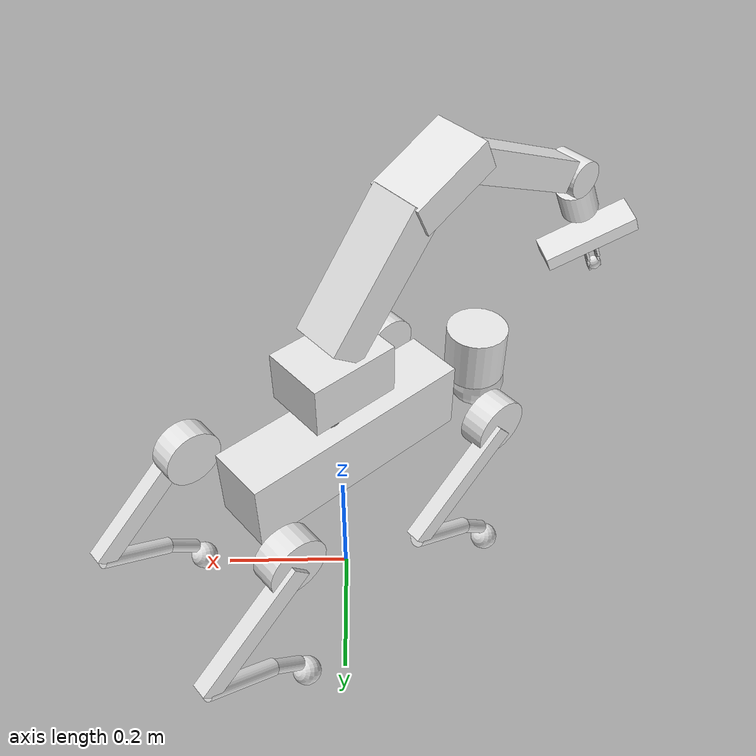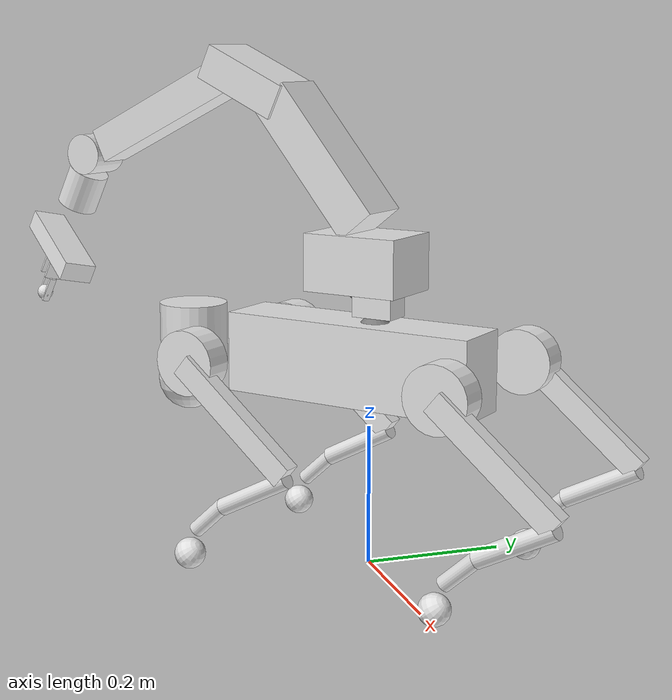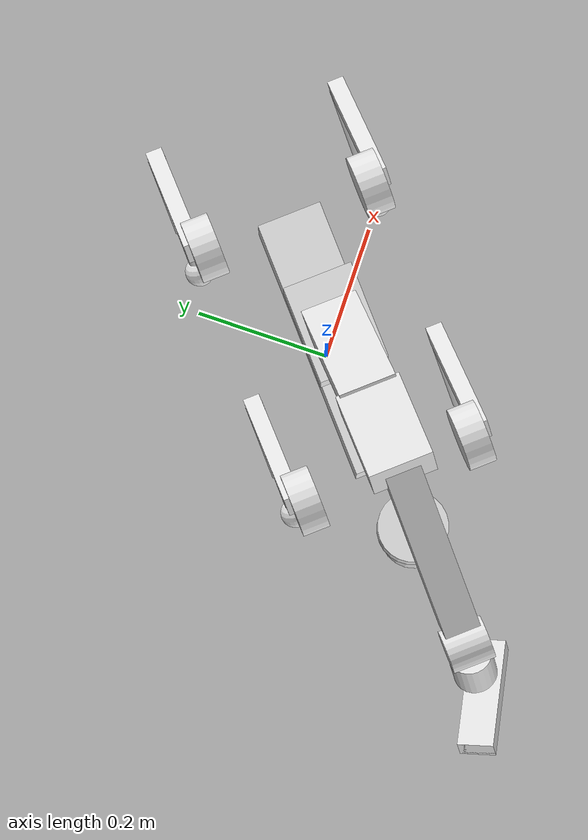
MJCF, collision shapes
<mujoco>
  <compiler angle="radian" assetdir="assets"/>
  <option timestep="0.02">
    <flag/>
  </option>
  <statistic/>
  <asset>
    <texture type="2d" colorspace="linear" name="noise_normal" file="noise_normal.png"/>
    <material name="black_plastic" rgba="0.0507087 0.0507087 0.0507087 1.0" reflectance="0.5" roughness="0.4" metallic="0.0" texuniform="true" texrepeat="12.0 12.0">
      <layer texture="noise_normal" role="normal"/>
    </material>
    <material name="black_metal" rgba="0.220085 0.220813 0.2209164 1.0" reflectance="0.5" roughness="0.5" metallic="1.0" texuniform="true" texrepeat="16.0 16.0">
      <layer texture="noise_normal" role="normal"/>
    </material>
    <material name="aluminum_rough" rgba="0.9621279 0.9653596 0.9658199 1.0" reflectance="0.5" roughness="0.54" metallic="1.0" texuniform="true" texrepeat="12.0 12.0">
      <layer texture="noise_normal" role="normal"/>
    </material>
    <material name="gray_plastic" rgba="0.5969514 0.5983734 0.6262097 1.0" reflectance="0.5" roughness="0.4" metallic="0.0"/>
    <material name="black_rubber" rgba="0.0507087 0.0507087 0.0507087 1.0" reflectance="0.5" roughness="0.7318181" metallic="0.0" texuniform="true" texrepeat="16.0 16.0">
      <layer texture="noise_normal" role="normal"/>
    </material>
    <material name="template" rgba="0.9063318 0.9063318 0.9063318 1.0" reflectance="0.5" roughness="0.5" metallic="0.0"/>
    <mesh name="base_0" file="base_0.obj"/>
    <mesh name="base_1" file="base_1.obj"/>
    <mesh name="base_2" file="base_2.obj"/>
    <mesh name="base_3" file="base_3.obj"/>
    <mesh name="base_4" file="base_4.obj"/>
    <mesh name="hip_0" file="hip_0.obj"/>
    <mesh name="hip_1" file="hip_1.obj"/>
    <mesh name="thigh_0" file="thigh_0.obj"/>
    <mesh name="thigh_1" file="thigh_1.obj"/>
    <mesh name="calf_0" file="calf_0.obj"/>
    <mesh name="foot" file="foot.obj"/>
    <mesh name="thigh_mirror_0" file="thigh_mirror_0.obj"/>
    <mesh name="thigh_mirror_1" file="thigh_mirror_1.obj"/>
    <mesh name="calf_mirror_0" file="calf_mirror_0.obj"/>
    <mesh name="slider_base_link_0" file="slider_base_link_0.obj"/>
    <mesh name="link1" file="link1.obj"/>
    <mesh name="link4" file="link4.obj"/>
    <mesh name="base_link_base_link" file="base_link_base_link.obj"/>
    <mesh name="slider_base_link_0_001" file="slider_base_link_0_001.obj"/>
    <mesh name="link2_0" file="link2_0.obj"/>
    <mesh name="link6" file="link6.obj"/>
    <mesh name="right" file="right.obj"/>
    <mesh name="link3_1" file="link3_1.obj"/>
    <mesh name="link5_1" file="link5_1.obj"/>
    <mesh name="link2_1" file="link2_1.obj"/>
    <mesh name="left" file="left.obj"/>
    <mesh name="link3_0" file="link3_0.obj"/>
    <mesh name="link5_0" file="link5_0.obj"/>
  </asset>
  <worldbody>
    <body name="base" pos="0.0 -0.0164447 0.2959779" quat="0.3440766 0.0 0.0 -0.9389416">
      <inertial pos="0.021112 0.0 -0.005366" quat="0.000544 -0.7134351 0.0017372 -0.700719" mass="6.921" diaginertia="0.107027 0.0980771 0.0244531"/>
      <joint name="JNT_Joint" pos="0.0 0.0 0.0" axis="-0.0 1.0 1e-07" type="free" armature="0.01" damping="0.5" frictionloss="0.2"/>
      <geom name="base1" pos="0.0 0.0 0.0" quat="1.0 0.0 0.0 0.0" type="box" size="0.1881 0.04675 0.057" material="template" group="3" condim="1" conaffinity="2" friction="0.6 0.005 0.0001" margin="0.001"/>
      <geom name="base2" pos="0.285 0.0 0.01" quat="1.0 0.0 0.0 0.0" type="cylinder" size="0.05 0.045" material="template" group="3" condim="1" conaffinity="2" friction="0.6 0.005 0.0001" margin="0.001"/>
      <geom name="base3" pos="0.293 0.0 -0.06" quat="1.0 0.0 0.0 0.0" type="sphere" size="0.047" material="template" group="3" condim="1" conaffinity="2" friction="0.6 0.005 0.0001" margin="0.001"/>
      <geom name="base_0" pos="0.0 0.0 0.0" quat="1.0 0.0 0.0 0.0" type="mesh" mesh="base_0" material="black_plastic" group="2" condim="1" contype="0" conaffinity="0" friction="0.6 0.005 0.0001" margin="0.001"/>
      <geom name="base_1" pos="0.0 0.0 0.0" quat="1.0 0.0 0.0 0.0" type="mesh" mesh="base_1" material="black_metal" group="2" condim="1" contype="0" conaffinity="0" friction="0.6 0.005 0.0001" margin="0.001"/>
      <geom name="base_2" pos="0.0 0.0 0.0" quat="1.0 0.0 0.0 0.0" type="mesh" mesh="base_2" material="black_plastic" group="2" condim="1" contype="0" conaffinity="0" friction="0.6 0.005 0.0001" margin="0.001"/>
      <geom name="base_3" pos="0.0 0.0 0.0" quat="1.0 0.0 0.0 0.0" type="mesh" mesh="base_3" material="aluminum_rough" group="2" condim="1" contype="0" conaffinity="0" friction="0.6 0.005 0.0001" margin="0.001"/>
      <geom name="base_4" pos="0.0 0.0 0.0" quat="1.0 0.0 0.0 0.0" type="mesh" mesh="base_4" material="gray_plastic" group="2" condim="1" contype="0" conaffinity="0" friction="0.6 0.005 0.0001" margin="0.001"/>
      <site name="imu" pos="-0.02557 0.0 0.04232" quat="1.0 0.0 0.0 0.0" type="sphere" size="0.025"/>
      <body name="arm_base_on_go2" pos="0.0045 -0.0 0.0945" quat="1.0 0.0 -0.0 0.0">
        <body name="arm_base" pos="0.0 0.0 0.0" quat="1.0 0.0 0.0 -0.0">
          <inertial pos="-0.0262914 -0.0151415 0.0260742" quat="1.0 0.0 0.0 -0.0" mass="0.7355205" diaginertia="0.0007989 0.0009956 0.0014837"/>
          <geom name="base_link_collision" pos="-0.015 0.0 0.045" quat="1.0 0.0 0.0 -0.0" type="box" size="0.07 0.05 0.04" material="template" group="3"/>
          <geom name="base_link_visual" pos="0.0 0.0 0.0" quat="1.0 0.0 0.0 -0.0" type="mesh" mesh="base_link_base_link" material="black_metal" group="2" contype="0" conaffinity="0"/>
          <site name="armbasepoint" pos="0.0 0.0 0.0" quat="1.0 0.0 0.0 -0.0" type="sphere" size="0.01"/>
          <site name="touch_site_base" pos="-0.015 0.0 0.045" quat="1.0 0.0 0.0 -0.0" type="sphere" size="0.001" group="3"/>
          <body name="link1" pos="0.0 0.0 0.1172" quat="1.0 0.0 0.0 0.0">
            <inertial pos="7.91e-05 -0.002527 -0.0041359" quat="0.6967159 0.7165578 0.0238919 -0.0236876" mass="0.54639" diaginertia="0.0003463 0.0003254 0.0002863"/>
            <joint name="joint1" pos="0.0 0.0 0.0" axis="0.0 0.0 1.0" type="hinge" range="-3.1415999 2.0943999" actuatorfrcrange="-24.0 24.0" armature="0.01" damping="0.2" frictionloss="1.0"/>
            <geom name="link1_visual" pos="0.0 0.0 0.0" quat="1.0 -0.0 0.0 -0.0" type="mesh" mesh="link1" material="black_metal" group="2" contype="0" conaffinity="0"/>
            <site name="touch_site_link1" pos="0.0 0.0 0.0" quat="1.0 -0.0 0.0 -0.0" type="sphere" size="0.001" group="3"/>
            <body name="link2" pos="0.0 -0.0 1e-07" quat="0.6596778 0.6596767 -0.2546084 0.2546103">
              <inertial pos="0.22493 0.0047721 0.008023" quat="0.210875 -0.6324729 0.273056 -0.6935058" mass="0.64621" diaginertia="0.0051654 0.0050504 0.0004186"/>
              <joint name="joint2" pos="0.0 0.0 0.0" axis="-1e-07 -0.0 1.0" type="hinge" range="-2.9670999 0.17453" actuatorfrcrange="-24.0 24.0" armature="0.01" damping="0.2" frictionloss="1.0"/>
              <geom name="link2_0_visual" pos="0.0 -0.0 0.0" quat="1.0 0.0 -0.0 0.0" type="mesh" mesh="link2_0" material="black_metal" group="2" contype="0" conaffinity="0"/>
              <geom name="link2_1_visual" pos="0.0 -0.0 0.0" quat="1.0 0.0 -0.0 0.0" type="mesh" mesh="link2_1" material="aluminum_rough" group="2" contype="0" conaffinity="0"/>
              <geom name="link2_collision1" pos="0.08 0.015 0.0" quat="0.9971888 -0.0 -0.0 0.0749297" type="box" size="0.11 0.03 0.04" material="template" group="3"/>
              <geom name="link2_collision2" pos="0.235 0.015 0.0" quat="0.9887711 -0.0 -0.0 -0.1494382" type="box" size="0.065 0.025 0.045" material="template" group="3"/>
              <site name="touch_site_link2" pos="0.15 0.0 0.0" quat="1.0 -0.0 -0.0 0.0" type="sphere" size="0.001" group="3"/>
              <body name="link3" pos="0.2700901 0.0 -1e-07" quat="0.8291553 0.0 0.0 -0.5590183">
                <inertial pos="0.16813 -5.56e-05 0.0031184" quat="0.511278 0.4884231 0.4891911 0.5106171" mass="0.26829" diaginertia="0.0031527 0.0030951 0.0002394"/>
                <joint name="joint3" pos="0.0 0.0 0.0" axis="-1e-07 0.0 1.0" type="hinge" range="-0.087266 3.1415999" actuatorfrcrange="-24.0 24.0" armature="0.01" damping="0.2" frictionloss="1.0"/>
                <geom name="link3_0_visual" pos="0.0 2e-07 0.0" quat="1.0 0.0 -2e-07 -0.0" type="mesh" mesh="link3_0" material="black_metal" group="2" contype="0" conaffinity="0"/>
                <geom name="link3_1_visual" pos="0.0 2e-07 0.0" quat="1.0 0.0 -2e-07 -0.0" type="mesh" mesh="link3_1" material="aluminum_rough" group="2" contype="0" conaffinity="0"/>
                <geom name="link3_collision" pos="0.13 0.0 0.0" quat="1.0 -0.0 -0.0 -0.0" type="box" size="0.13 0.025 0.025" material="template" group="3"/>
                <site name="touch_site_link3" pos="0.13 0.0 0.0" quat="1.0 -0.0 -0.0 -0.0" type="sphere" size="0.001" group="3"/>
                <body name="link4" pos="0.29015 0.0 0.0" quat="0.5000001 -0.5 0.5 -0.5">
                  <inertial pos="5.2e-06 0.0004041 -0.03228" quat="0.9999686 -0.0001748 -0.0079204 -6.98e-05" mass="0.34876" diaginertia="0.0004236 0.000412 0.0001268"/>
                  <joint name="joint4" pos="0.0 0.0 0.0" axis="0.0 -0.0 1.0" type="hinge" range="-3.0107 3.0107" actuatorfrcrange="-8.0 8.0" armature="0.01" damping="0.1" frictionloss="0.5"/>
                  <geom name="link4_collision" pos="0.0 0.0 0.0" quat="0.7071055 0.707108 0.0 0.0" type="cylinder" size="0.03 0.03" material="template" group="3"/>
                  <geom name="link4_visual" pos="-0.0 -0.0 -1e-07" quat="1.0 -0.0 0.0 0.0" type="mesh" mesh="link4" material="black_metal" group="2" contype="0" conaffinity="0"/>
                  <site name="touch_site_link4" pos="0.0 0.0 0.0" quat="1.0 -0.0 0.0 0.0" type="sphere" size="0.001" group="3"/>
                  <body name="link5" pos="-1e-07 -1e-07 -1e-07" quat="0.6695616 0.6695647 0.2273443 -0.2273431">
                    <inertial pos="8.3e-06 0.026148 0.002525" quat="0.5315679 0.4662999 0.4662999 0.5315679" mass="0.36132" diaginertia="0.0004677 0.0004329 0.0001782"/>
                    <joint name="joint5" pos="0.0 0.0 0.0" axis="-1e-07 -0.0 1.0" type="hinge" range="-1.7628 1.7628" actuatorfrcrange="-8.0 8.0" armature="0.01" damping="0.1" frictionloss="0.5"/>
                    <geom name="link5_0_visual" pos="0.0 0.0 -0.0" quat="1.0 -0.0 -2e-07 -0.0" type="mesh" mesh="link5_0" material="black_metal" group="2" contype="0" conaffinity="0"/>
                    <geom name="link5_1_visual" pos="0.0 0.0 -0.0" quat="1.0 -0.0 -2e-07 -0.0" type="mesh" mesh="link5_1" material="aluminum_rough" group="2" contype="0" conaffinity="0"/>
                    <geom name="link5_collision" pos="0.0 0.06 0.0" quat="0.7071055 0.707108 -0.0 0.0" type="cylinder" size="0.03 0.03" material="template" group="3"/>
                    <site name="touch_site_link5" pos="0.0 0.06 0.0" quat="1.0 -0.0 -0.0 -0.0" type="sphere" size="0.001" group="3"/>
                    <body name="link6" pos="-4e-07 0.23645 -1e-07" quat="0.6029063 -0.6029088 -0.3694616 -0.3694631">
                      <inertial pos="-0.0047053 7.39e-05 -0.12293" quat="1.0 -0.0 -0.0 0.0" mass="0.53855" diaginertia="5e-05 5e-05 3.85e-05"/>
                      <joint name="joint6" pos="0.0 0.0 0.0" axis="0.0 0.0 1.0" type="hinge" range="-3.0107 3.0107" actuatorfrcrange="-8.0 8.0" armature="0.01" damping="0.1" frictionloss="0.5"/>
                      <geom name="link6_collision" pos="0.0 0.0 -0.07" quat="1.0 -0.0 -0.0 0.0" type="box" size="0.025 0.08 0.015" material="template" group="3"/>
                      <geom name="link6_visual" pos="0.0 0.0 0.0" quat="1.0 -1e-07 0.0 0.0" type="mesh" mesh="link6" material="black_metal" group="2" contype="0" conaffinity="0"/>
                      <site name="endpoint" pos="0.0 0.0 0.015" quat="0.7071055 -0.0 -0.707108 0.0" type="sphere" size="0.01"/>
                      <site name="touch_site_link6" pos="0.0 0.0 -0.07" quat="1.0 -0.0 -0.0 0.0" type="sphere" size="0.001" group="3"/>
                      <body name="eef_connect_base_link" pos="0.0 1e-07 -1e-07" quat="1.0 -0.0 0.0 -0.0">
                        <geom name="eef_collision" pos="0.0 0.0 0.015" quat="1.0 0.0 -0.0 -0.0" type="sphere" size="0.012" material="template" group="3"/>
                        <site name="touch_site_eef" pos="0.0 0.0 0.015" quat="1.0 0.0 -0.0 -0.0" type="sphere" size="0.001" group="3"/>
                        <body name="g2_base_link" pos="1e-07 -2e-07 -1e-07" quat="1.0 0.0 0.0 0.0">
                          <geom name="g2_base_link_collision" pos="0.0 0.0 -0.07" quat="1.0 0.0 -0.0 -0.0" type="box" size="0.025 0.08 0.015" material="template" group="3"/>
                          <site name="touch_site_g2base" pos="0.0 0.0 -0.07" quat="1.0 0.0 -0.0 -0.0" type="sphere" size="0.001" group="3"/>
                          <body name="g2_left_link" pos="-1e-07 0.0077898 0.0" quat="1.0 0.0 0.0 0.0">
                            <inertial pos="-0.048742 0.0096369 0.0004432" quat="0.7573929 0.0415116 0.0313705 0.650883" mass="0.0626" diaginertia="2.79e-05 1.9e-05 1.22e-05"/>
                            <geom name="g2_left_finger_collision" pos="0.0 0.002 -0.035" quat="1.0 -0.0 0.0 0.0" type="box" size="0.015 0.002 0.018" material="template" group="3"/>
                            <geom name="g2_left_finger_pad" pos="0.0 0.002 0.005" quat="1.0 -0.0 0.0 0.0" type="box" size="0.00525 0.002 0.02" material="template" group="3"/>
                            <geom name="g2_left_link_visual" pos="2e-07 -1e-07 1e-07" quat="1.0 -0.0 1e-07 0.0" type="mesh" mesh="right" material="black_metal" group="2" contype="0" conaffinity="0"/>
                          </body>
                          <body name="g2_right_link" pos="-1e-07 -0.0062174 -0.0" quat="1.0 0.0 0.0 0.0">
                            <inertial pos="-0.049039 -0.0096764 0.0003887" quat="0.6504908 0.0296695 0.0398251 0.7578888" mass="0.061803" diaginertia="2.75e-05 1.88e-05 1.19e-05"/>
                            <geom name="g2_right_finger_collision" pos="0.0 -0.002 -0.035" quat="1.0 -0.0 0.0 0.0" type="box" size="0.015 0.002 0.018" material="template" group="3"/>
                            <geom name="g2_right_finger_pad" pos="0.0 -0.002 0.005" quat="1.0 -0.0 0.0 0.0" type="box" size="0.00525 0.002 0.02" material="template" group="3"/>
                            <geom name="g2_right_link_visual" pos="1e-07 2e-07 0.0" quat="1.0 -0.0 1e-07 0.0" type="mesh" mesh="left" material="black_metal" group="2" contype="0" conaffinity="0"/>
                          </body>
                        </body>
                      </body>
                    </body>
                  </body>
                </body>
              </body>
            </body>
          </body>
        </body>
      </body>
      <body name="FL_hip" pos="0.1934 0.0465 0.0" quat="1.0 0.0 0.0 0.0">
        <inertial pos="-0.0054 0.00194 -0.000105" quat="0.4970138 0.4992449 0.505462 0.4982369" mass="0.678" diaginertia="0.000884 0.000596 0.00048"/>
        <joint name="FL_hip_joint" pos="0.0 0.0 0.0" axis="1.0 -1e-07 -1e-07" type="hinge" range="-1.0472 1.0472" armature="0.01" damping="0.5" frictionloss="0.2"/>
        <geom name="FL_hip_geom" pos="0.0 0.08 0.0" quat="0.7071068 0.7071068 -0.0 0.0" type="cylinder" size="0.046 0.02" material="template" group="3" condim="1" conaffinity="2" friction="0.6 0.005 0.0001" margin="0.001"/>
        <geom name="hip_0" pos="-1e-07 -1e-07 0.0" quat="1.0 0.0 0.0 0.0" type="mesh" mesh="hip_0" material="aluminum_rough" group="2" condim="1" contype="0" conaffinity="0" friction="0.6 0.005 0.0001" margin="0.001"/>
        <geom name="hip_1" pos="-1e-07 -1e-07 0.0" quat="1.0 0.0 0.0 0.0" type="mesh" mesh="hip_1" material="gray_plastic" group="2" condim="1" contype="0" conaffinity="0" friction="0.6 0.005 0.0001" margin="0.001"/>
        <body name="FL_thigh" pos="-1e-07 0.0954999 0.0" quat="0.9043117 -0.0 0.4268727 -0.0">
          <inertial pos="-0.00374 -0.0223 -0.0327" quat="0.8295329 0.0847635 -0.0200632 0.5516229" mass="1.152" diaginertia="0.0059497 0.0058415 0.0008788"/>
          <joint name="FL_thigh_joint" pos="0.0 0.0 0.0" axis="0.0 1.0 1e-07" type="hinge" range="-1.5707999 3.4907" armature="0.01" damping="0.5" frictionloss="0.2"/>
          <geom name="FL_thigh_geom" pos="0.0 0.0 -0.1065" quat="0.7071068 -0.0 0.7071068 0.0" type="box" size="0.1065 0.01225 0.017" material="template" group="3" condim="1" conaffinity="2" friction="0.6 0.005 0.0001" margin="0.001"/>
          <geom name="thigh_0" pos="0.0 0.0 -0.0" quat="1.0 -0.0 0.0 -1e-07" type="mesh" mesh="thigh_0" material="aluminum_rough" group="2" condim="1" contype="0" conaffinity="0" friction="0.6 0.005 0.0001" margin="0.001"/>
          <geom name="thigh_1" pos="0.0 0.0 -0.0" quat="1.0 -0.0 0.0 -1e-07" type="mesh" mesh="thigh_1" material="gray_plastic" group="2" condim="1" contype="0" conaffinity="0" friction="0.6 0.005 0.0001" margin="0.001"/>
          <body name="FL_calf" pos="0.0 0.0 -0.213" quat="0.6394874 -0.0 -0.7688016 0.0">
            <inertial pos="0.006296 -0.0006221 -0.141417" quat="0.7106717 0.001541 -0.0045009 0.7035077" mass="0.241352" diaginertia="0.0014901 0.0014636 5.31e-05"/>
            <joint name="FL_calf_joint" pos="0.0 0.0 0.0" axis="0.0 1.0 1e-07" type="hinge" range="-2.7227001 -0.83776" armature="0.01" damping="0.5" frictionloss="0.2"/>
            <geom name="calf_0" pos="1e-07 -0.0 -0.0" quat="1.0 0.0 1e-07 0.0" type="mesh" mesh="calf_0" material="aluminum_rough" group="2" condim="1" contype="0" conaffinity="0" friction="0.6 0.005 0.0001" margin="0.001"/>
            <geom name="FL" pos="-0.002 0.0 -0.213" quat="1.0 0.0 0.0 0.0" type="sphere" size="0.022" material="template" group="3" condim="6" conaffinity="2" priority="1" friction="0.4 0.02 0.01" margin="0.001"/>
            <geom name="FL_calf_geom1" pos="0.008 0.0 -0.06" quat="0.9944927 0.0 -0.104807 0.0" type="cylinder" size="0.012 0.06" material="template" group="3" condim="1" conaffinity="2" friction="0.6 0.005 0.0001" margin="0.001"/>
            <geom name="FL_calf_geom2" pos="0.02 0.0 -0.148" quat="0.9996875 0.0 0.0249974 0.0" type="cylinder" size="0.011 0.0325" material="template" group="3" condim="1" conaffinity="2" friction="0.6 0.005 0.0001" margin="0.001"/>
            <geom name="foot" pos="1e-07 -0.0 -0.2130001" quat="1.0 0.0 1e-07 0.0" type="mesh" mesh="foot" material="black_rubber" group="2" condim="1" contype="0" conaffinity="0" friction="0.6 0.005 0.0001" margin="0.001"/>
          </body>
        </body>
      </body>
      <body name="FR_hip" pos="0.1934001 -0.0465 0.0" quat="1.0 0.0 0.0 0.0">
        <inertial pos="-0.0054 -0.00194 -0.000105" quat="0.4982368 0.5054619 0.499245 0.4970139" mass="0.678" diaginertia="0.000884 0.000596 0.00048"/>
        <joint name="FR_hip_joint" pos="0.0 0.0 0.0" axis="1.0 -1e-07 -1e-07" type="hinge" range="-1.0472 1.0472" armature="0.01" damping="0.5" frictionloss="0.2"/>
        <geom name="FR_hip_geom" pos="0.0 -0.08 0.0" quat="0.7071066 0.7071069 0.0 0.0" type="cylinder" size="0.046 0.02" material="template" group="3" condim="1" conaffinity="2" friction="0.6 0.005 0.0001" margin="0.001"/>
        <geom name="hip_0_001" pos="0.0 0.0 0.0" quat="4.63e-05 1.0 -0.0 0.0" type="mesh" mesh="hip_0" material="aluminum_rough" group="2" condim="1" contype="0" conaffinity="0" friction="0.6 0.005 0.0001" margin="0.001"/>
        <geom name="hip_1_001" pos="0.0 0.0 0.0" quat="4.63e-05 1.0 -0.0 0.0" type="mesh" mesh="hip_1" material="gray_plastic" group="2" condim="1" contype="0" conaffinity="0" friction="0.6 0.005 0.0001" margin="0.001"/>
        <body name="FR_thigh" pos="0.0 -0.0955 0.0" quat="0.9043117 0.0 0.4268728 0.0">
          <inertial pos="-0.00374 0.0223 -0.0327" quat="0.551623 -0.0200632 0.0847635 0.8295329" mass="1.152" diaginertia="0.0059497 0.0058415 0.0008788"/>
          <joint name="FR_thigh_joint" pos="0.0 0.0 0.0" axis="-0.0 1.0 1e-07" type="hinge" range="-1.5707999 3.4907" armature="0.01" damping="0.5" frictionloss="0.2"/>
          <geom name="FR_thigh_geom" pos="0.0 0.0 -0.1065" quat="0.7071068 0.0 0.7071068 0.0" type="box" size="0.1065 0.01225 0.017" material="template" group="3" condim="1" conaffinity="2" friction="0.6 0.005 0.0001" margin="0.001"/>
          <geom name="thigh_mirror_0" pos="0.0 0.0 -0.0" quat="1.0 1e-07 1e-07 -0.0" type="mesh" mesh="thigh_mirror_0" material="aluminum_rough" group="2" condim="1" contype="0" conaffinity="0" friction="0.6 0.005 0.0001" margin="0.001"/>
          <geom name="thigh_mirror_1" pos="0.0 0.0 -0.0" quat="1.0 1e-07 1e-07 -0.0" type="mesh" mesh="thigh_mirror_1" material="gray_plastic" group="2" condim="1" contype="0" conaffinity="0" friction="0.6 0.005 0.0001" margin="0.001"/>
          <body name="FR_calf" pos="-0.0 -0.0 -0.2129999" quat="0.6394874 -0.0 -0.7688016 -1e-07">
            <inertial pos="0.006296 0.0006221 -0.141417" quat="0.7035078 -0.0045009 0.001541 0.7106717" mass="0.241352" diaginertia="0.0014901 0.0014636 5.31e-05"/>
            <joint name="FR_calf_joint" pos="0.0 0.0 0.0" axis="0.0 1.0 1e-07" type="hinge" range="-2.7227001 -0.83776" armature="0.01" damping="0.5" frictionloss="0.2"/>
            <geom name="calf_mirror_0" pos="-1e-07 1e-07 1e-07" quat="1.0 -0.0 -1e-07 -0.0" type="mesh" mesh="calf_mirror_0" material="aluminum_rough" group="2" condim="1" contype="0" conaffinity="0" friction="0.6 0.005 0.0001" margin="0.001"/>
            <geom name="foot_001" pos="0.0 0.0 -0.213" quat="1.0 0.0 -0.0 -0.0" type="mesh" mesh="foot" material="black_rubber" group="2" condim="1" contype="0" conaffinity="0" friction="0.6 0.005 0.0001" margin="0.001"/>
            <geom name="FR" pos="-0.002 0.0 -0.213" quat="1.0 0.0 -0.0 -0.0" type="sphere" size="0.022" material="template" group="3" condim="6" conaffinity="2" priority="1" friction="0.4 0.02 0.01" margin="0.001"/>
            <geom name="FR_calf_geom1" pos="0.01 0.0 -0.06" quat="0.9950042 -0.0 -0.0998334 -0.0" type="cylinder" size="0.013 0.06" material="template" group="3" condim="1" conaffinity="2" friction="0.6 0.005 0.0001" margin="0.001"/>
            <geom name="FR_calf_geom2" pos="0.02 0.0 -0.148" quat="0.9996875 0.0 0.0249974 -0.0" type="cylinder" size="0.011 0.0325" material="template" group="3" condim="1" conaffinity="2" friction="0.6 0.005 0.0001" margin="0.001"/>
          </body>
        </body>
      </body>
      <body name="RL_hip" pos="-0.1933999 0.0465 -0.0" quat="1.0 0.0 0.0 0.0">
        <inertial pos="0.0054 0.00194 -0.000105" quat="0.5054618 0.498237 0.497014 0.4992449" mass="0.678" diaginertia="0.000884 0.000596 0.00048"/>
        <joint name="RL_hip_joint" pos="0.0 0.0 0.0" axis="1.0 -1e-07 -1e-07" type="hinge" range="-1.0472 1.0472" armature="0.01" damping="0.5" frictionloss="0.2"/>
        <geom name="hip_0_002" pos="0.0 0.0 0.0" quat="4.63e-05 -0.0 1.0 -0.0" type="mesh" mesh="hip_0" material="aluminum_rough" group="2" condim="1" contype="0" conaffinity="0" friction="0.6 0.005 0.0001" margin="0.001"/>
        <geom name="hip_1_002" pos="0.0 0.0 0.0" quat="4.63e-05 -0.0 1.0 -0.0" type="mesh" mesh="hip_1" material="gray_plastic" group="2" condim="1" contype="0" conaffinity="0" friction="0.6 0.005 0.0001" margin="0.001"/>
        <geom name="RL_hip_geom" pos="0.0 0.08 0.0" quat="0.7071066 0.7071069 0.0 0.0" type="cylinder" size="0.046 0.02" material="template" group="3" condim="1" conaffinity="2" friction="0.6 0.005 0.0001" margin="0.001"/>
        <body name="RL_thigh" pos="0.0 0.0955001 0.0" quat="0.9043117 0.0 0.4268728 -0.0">
          <inertial pos="-0.00374 -0.0223 -0.0327" quat="0.8295329 0.0847635 -0.0200632 0.5516229" mass="1.152" diaginertia="0.0059497 0.0058415 0.0008788"/>
          <joint name="RL_thigh_joint" pos="0.0 0.0 0.0" axis="0.0 1.0 1e-07" type="hinge" range="-0.5236 4.5379" armature="0.01" damping="0.5" frictionloss="0.2"/>
          <geom name="RL_thigh_geom" pos="0.0 0.0 -0.1065" quat="0.7071068 -0.0 0.7071068 -0.0" type="box" size="0.1065 0.01225 0.017" material="template" group="3" condim="1" conaffinity="2" friction="0.6 0.005 0.0001" margin="0.001"/>
          <geom name="thigh_0_001" pos="0.0 0.0 0.0" quat="1.0 -0.0 -0.0 0.0" type="mesh" mesh="thigh_0" material="aluminum_rough" group="2" condim="1" contype="0" conaffinity="0" friction="0.6 0.005 0.0001" margin="0.001"/>
          <geom name="thigh_1_001" pos="0.0 0.0 0.0" quat="1.0 -0.0 -0.0 0.0" type="mesh" mesh="thigh_1" material="gray_plastic" group="2" condim="1" contype="0" conaffinity="0" friction="0.6 0.005 0.0001" margin="0.001"/>
          <body name="RL_calf" pos="-0.0 -1e-07 -0.213" quat="0.6394875 -0.0 -0.7688015 1e-07">
            <inertial pos="0.006296 -0.0006221 -0.141417" quat="0.7106717 0.001541 -0.0045009 0.7035077" mass="0.241352" diaginertia="0.0014901 0.0014636 5.31e-05"/>
            <joint name="RL_calf_joint" pos="0.0 0.0 0.0" axis="-0.0 1.0 1e-07" type="hinge" range="-2.7227001 -0.83776" armature="0.01" damping="0.5" frictionloss="0.2"/>
            <geom name="calf_0_001" pos="0.0 0.0 0.0" quat="1.0 -0.0 0.0 0.0" type="mesh" mesh="calf_0" material="aluminum_rough" group="2" condim="1" contype="0" conaffinity="0" friction="0.6 0.005 0.0001" margin="0.001"/>
            <geom name="foot_002" pos="0.0 0.0 -0.213" quat="1.0 -0.0 0.0 0.0" type="mesh" mesh="foot" material="black_rubber" group="2" condim="1" contype="0" conaffinity="0" friction="0.6 0.005 0.0001" margin="0.001"/>
            <geom name="RL" pos="-0.002 0.0 -0.213" quat="1.0 -0.0 0.0 0.0" type="sphere" size="0.022" material="template" group="3" condim="6" conaffinity="2" priority="1" friction="0.4 0.02 0.01" margin="0.001"/>
            <geom name="RL_calf_geom1" pos="0.01 0.0 -0.06" quat="0.9950042 -0.0 -0.0998334 0.0" type="cylinder" size="0.013 0.06" material="template" group="3" condim="1" conaffinity="2" friction="0.6 0.005 0.0001" margin="0.001"/>
            <geom name="RL_calf_geom2" pos="0.02 0.0 -0.148" quat="0.9996875 -0.0 0.0249974 -0.0" type="cylinder" size="0.011 0.0325" material="template" group="3" condim="1" conaffinity="2" friction="0.6 0.005 0.0001" margin="0.001"/>
          </body>
        </body>
      </body>
      <body name="RR_hip" pos="-0.1934 -0.0465 -0.0" quat="1.0 0.0 0.0 0.0">
        <inertial pos="0.0054 -0.00194 -0.000105" quat="0.4992448 0.4970139 0.4982371 0.5054619" mass="0.678" diaginertia="0.000884 0.000596 0.00048"/>
        <joint name="RR_hip_joint" pos="0.0 0.0 0.0" axis="1.0 -1e-07 -1e-07" type="hinge" range="-1.0472 1.0472" armature="0.01" damping="0.5" frictionloss="0.2"/>
        <geom name="hip_0_003" pos="0.0 0.0 0.0" quat="0.0 4.63e-05 4.63e-05 -1.0" type="mesh" mesh="hip_0" material="aluminum_rough" group="2" condim="1" contype="0" conaffinity="0" friction="0.6 0.005 0.0001" margin="0.001"/>
        <geom name="hip_1_003" pos="0.0 0.0 0.0" quat="0.0 4.63e-05 4.63e-05 -1.0" type="mesh" mesh="hip_1" material="gray_plastic" group="2" condim="1" contype="0" conaffinity="0" friction="0.6 0.005 0.0001" margin="0.001"/>
        <geom name="RR_hip_geom" pos="0.0 -0.08 0.0" quat="0.7071066 0.7071069 -0.0 0.0" type="cylinder" size="0.046 0.02" material="template" group="3" condim="1" conaffinity="2" friction="0.6 0.005 0.0001" margin="0.001"/>
        <body name="RR_thigh" pos="0.0 -0.0955001 -0.0" quat="0.9043118 -0.0 0.4268726 0.0">
          <inertial pos="-0.00374 0.0223 -0.0327" quat="0.551623 -0.0200632 0.0847635 0.8295329" mass="1.152" diaginertia="0.0059497 0.0058415 0.0008788"/>
          <joint name="RR_thigh_joint" pos="0.0 0.0 0.0" axis="-0.0 1.0 1e-07" type="hinge" range="-0.5236 4.5379" armature="0.01" damping="0.5" frictionloss="0.2"/>
          <geom name="RR_thigh_geom" pos="0.0 0.0 -0.1065" quat="0.7071068 -0.0 0.7071068 -0.0" type="box" size="0.1065 0.01225 0.017" material="template" group="3" condim="1" conaffinity="2" friction="0.6 0.005 0.0001" margin="0.001"/>
          <geom name="thigh_mirror_0_001" pos="0.0 0.0 0.0" quat="1.0 -0.0 -0.0 0.0" type="mesh" mesh="thigh_mirror_0" material="aluminum_rough" group="2" condim="1" contype="0" conaffinity="0" friction="0.6 0.005 0.0001" margin="0.001"/>
          <geom name="thigh_mirror_1_001" pos="0.0 0.0 0.0" quat="1.0 -0.0 -0.0 0.0" type="mesh" mesh="thigh_mirror_1" material="gray_plastic" group="2" condim="1" contype="0" conaffinity="0" friction="0.6 0.005 0.0001" margin="0.001"/>
          <body name="RR_calf" pos="-1e-07 -0.0 -0.213" quat="0.6394876 -0.0 -0.7688014 0.0">
            <inertial pos="0.006296 0.0006221 -0.141417" quat="0.7035078 -0.0045009 0.001541 0.7106717" mass="0.241352" diaginertia="0.0014901 0.0014636 5.31e-05"/>
            <joint name="RR_calf_joint" pos="0.0 0.0 0.0" axis="-0.0 1.0 1e-07" type="hinge" range="-2.7227001 -0.83776" armature="0.01" damping="0.5" frictionloss="0.2"/>
            <geom name="calf_mirror_0_001" pos="0.0 0.0 0.0" quat="1.0 -0.0 -0.0 -0.0" type="mesh" mesh="calf_mirror_0" material="aluminum_rough" group="2" condim="1" contype="0" conaffinity="0" friction="0.6 0.005 0.0001" margin="0.001"/>
            <geom name="foot_003" pos="0.0 0.0 -0.213" quat="1.0 -0.0 -0.0 -0.0" type="mesh" mesh="foot" material="black_rubber" group="2" condim="1" contype="0" conaffinity="0" friction="0.6 0.005 0.0001" margin="0.001"/>
            <geom name="RR" pos="-0.002 0.0 -0.213" quat="1.0 -0.0 -0.0 -0.0" type="sphere" size="0.022" material="template" group="3" condim="6" conaffinity="2" priority="1" friction="0.4 0.02 0.01" margin="0.001"/>
            <geom name="RR_calf_geom1" pos="0.01 0.0 -0.06" quat="0.9950042 -0.0 -0.0998334 -0.0" type="cylinder" size="0.013 0.06" material="template" group="3" condim="1" conaffinity="2" friction="0.6 0.005 0.0001" margin="0.001"/>
            <geom name="RR_calf_geom2" pos="0.02 0.0 -0.148" quat="0.9996875 -0.0 0.0249974 0.0" type="cylinder" size="0.011 0.0325" material="template" group="3" condim="1" conaffinity="2" friction="0.6 0.005 0.0001" margin="0.001"/>
          </body>
        </body>
      </body>
      <body name="slider_base_link" pos="-0.03 -0.0 0.08" quat="1.0 0.0 -0.0 0.0">
        <inertial pos="-0.0001483 0.0 0.0002824" quat="1.0 0.0 0.0 -0.0" mass="0.0789581" diaginertia="2.3e-06 0.0001874 0.0001882"/>
        <geom name="GEO_Box" pos="0.0 0.0 0.0" quat="1.0 0.0 0.0 -0.0" type="box" size="0.03 0.02 0.015" material="template" group="3" condim="1" friction="0.6 0.005 0.0001" margin="0.001"/>
        <geom name="slider_base_link_0" pos="0.0 0.0 -0.0" quat="1.0 0.0 0.0 -0.0" type="mesh" mesh="slider_base_link_0" material="gray_plastic" group="2" condim="1" contype="0" conaffinity="0" friction="0.6 0.005 0.0001" margin="0.001"/>
        <geom name="slider_base_link_0_001" pos="0.0 0.0 -0.0" quat="1.0 0.0 0.0 -0.0" type="mesh" mesh="slider_base_link_0_001" material="aluminum_rough" group="2" condim="1" contype="0" conaffinity="0" friction="0.6 0.005 0.0001" margin="0.001"/>
      </body>
    </body>
  </worldbody>
  <contact>
    <exclude body1="arm_base" body2="link2"/>
    <exclude body1="arm_base" body2="link1"/>
    <exclude body1="link1" body2="link2"/>
    <exclude body1="link2" body2="link3"/>
    <exclude body1="link3" body2="link4"/>
    <exclude body1="link4" body2="link5"/>
    <exclude body1="link5" body2="link6"/>
    <exclude body1="link6" body2="eef_connect_base_link"/>
    <exclude body1="eef_connect_base_link" body2="g2_base_link"/>
    <exclude body1="g2_base_link" body2="g2_left_link"/>
    <exclude body1="g2_base_link" body2="g2_right_link"/>
  </contact>
  <actuator>
    <position name="FR_hip_001" joint="FR_hip_joint" forcerange="-23.7000008 23.7000008" kp="35.0"/>
    <position name="FR_thigh_001" joint="FR_thigh_joint" forcerange="-23.7000008 23.7000008" kp="35.0"/>
    <position name="FR_calf_001" joint="FR_calf_joint" forcerange="-45.4300003 45.4300003" kp="35.0"/>
    <position name="FL_hip_001" joint="FL_hip_joint" forcerange="-23.7000008 23.7000008" kp="35.0"/>
    <position name="FL_thigh_001" joint="FL_thigh_joint" forcerange="-23.7000008 23.7000008" kp="35.0"/>
    <position name="FL_calf_001" joint="FL_calf_joint" forcerange="-45.4300003 45.4300003" kp="35.0"/>
    <position name="RR_hip_001" joint="RR_hip_joint" forcerange="-23.7000008 23.7000008" kp="35.0"/>
    <position name="RR_thigh_001" joint="RR_thigh_joint" forcerange="-23.7000008 23.7000008" kp="35.0"/>
    <position name="RR_calf_001" joint="RR_calf_joint" forcerange="-45.4300003 45.4300003" kp="35.0"/>
    <position name="RL_hip_001" joint="RL_hip_joint" forcerange="-23.7000008 23.7000008" kp="35.0"/>
    <position name="RL_thigh_001" joint="RL_thigh_joint" forcerange="-23.7000008 23.7000008" kp="35.0"/>
    <position name="RL_calf_001" joint="RL_calf_joint" forcerange="-45.4300003 45.4300003" kp="35.0"/>
    <position name="ACT_Actuator_005" joint="joint6" ctrllimited="true" forcelimited="true" forcerange="-8.0 8.0" kp="35.0" inheritrange="1.0"/>
    <position name="ACT_Actuator_003" joint="joint4" ctrllimited="true" forcelimited="true" forcerange="-8.0 8.0" kp="35.0" inheritrange="1.0"/>
    <position name="ACT_Actuator_001" joint="joint2" ctrllimited="true" forcelimited="true" forcerange="-24.0 24.0" kp="35.0" inheritrange="1.0"/>
    <position name="ACT_Actuator_002" joint="joint3" ctrllimited="true" forcelimited="true" forcerange="-24.0 24.0" kp="35.0" inheritrange="1.0"/>
    <position name="ACT_Actuator" joint="joint1" ctrllimited="true" forcelimited="true" forcerange="-24.0 24.0" kp="35.0" inheritrange="1.0"/>
    <position name="ACT_Actuator_004" joint="joint5" ctrllimited="true" forcelimited="true" forcerange="-8.0 8.0" kp="35.0" inheritrange="1.0"/>
  </actuator>
</mujoco>
